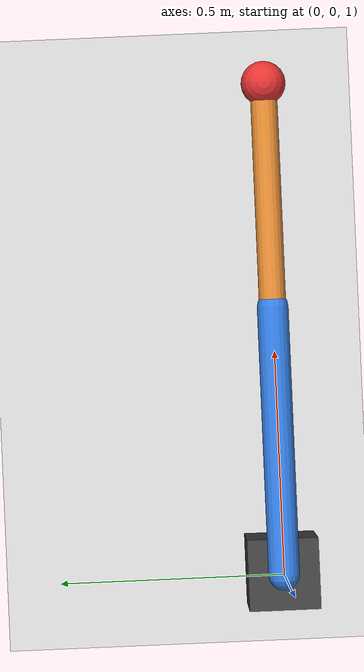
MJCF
<mujoco model="two_link_arm">
    <!--
        v0.5 学习目标：
        1. 理解 MuJoCo 中 body tree 的层级嵌套
        2. 理解多个 hinge joint 如何组成机械臂
        3. 理解多个 actuator 与多个 ctrl 输入的对应关系
    -->

    <compiler angle="degree"/>
    <option timestep="0.002" gravity="0 0 -9.81"/>

    <worldbody>
        <light name="top_light" pos="0 0 4"/>

        <geom
            name="floor"
            type="plane"
            size="4 4 0.1"
            rgba="0.85 0.85 0.85 1"
        />

        <body name="base" pos="0 0 1.0">
            <geom
                name="base_geom"
                type="box"
                pos="0 0 -0.1"
                size="0.08 0.08 0.1"
                rgba="0.25 0.25 0.25 1"
                contype="0"
                conaffinity="0"
            />

            <body name="link1" pos="0 0 0">
                <joint
                    name="shoulder_joint"
                    type="hinge"
                    axis="0 1 0"
                    damping="0.15"
                    armature="0.02"
                    limited="true"
                    range="-150 150"
                />

                <geom
                    name="link1_geom"
                    type="capsule"
                    fromto="0 0 0 0.6 0 0"
                    size="0.035"
                    mass="0.18"
                    rgba="0.2 0.5 0.9 1"
                />

                <!-- link2 是 link1 的子 body，所以会跟着 link1 一起运动 -->
                <body name="link2" pos="0.6 0 0">
                    <joint
                        name="elbow_joint"
                        type="hinge"
                        axis="0 1 0"
                        damping="0.12"
                        armature="0.02"
                        limited="true"
                        range="-150 150"
                    />

                    <geom
                        name="link2_geom"
                        type="capsule"
                        fromto="0 0 0 0.5 0 0"
                        size="0.03"
                        mass="0.12"
                        rgba="0.9 0.55 0.2 1"
                    />

                    <body name="end_effector" pos="0.5 0 0">
                        <geom
                            name="end_effector_geom"
                            type="sphere"
                            size="0.05"
                            mass="0.03"
                            rgba="0.9 0.2 0.2 1"
                        />
                    </body>
                </body>
            </body>
        </body>
    </worldbody>

    <actuator>
        <motor
            name="shoulder_motor"
            joint="shoulder_joint"
            gear="3"
            ctrllimited="true"
            ctrlrange="-3 3"
        />
        <motor
            name="elbow_motor"
            joint="elbow_joint"
            gear="3"
            ctrllimited="true"
            ctrlrange="-3 3"
        />
    </actuator>

    <keyframe>
        <key name="start_pose" qpos="20 -30"/>
    </keyframe>
</mujoco>
